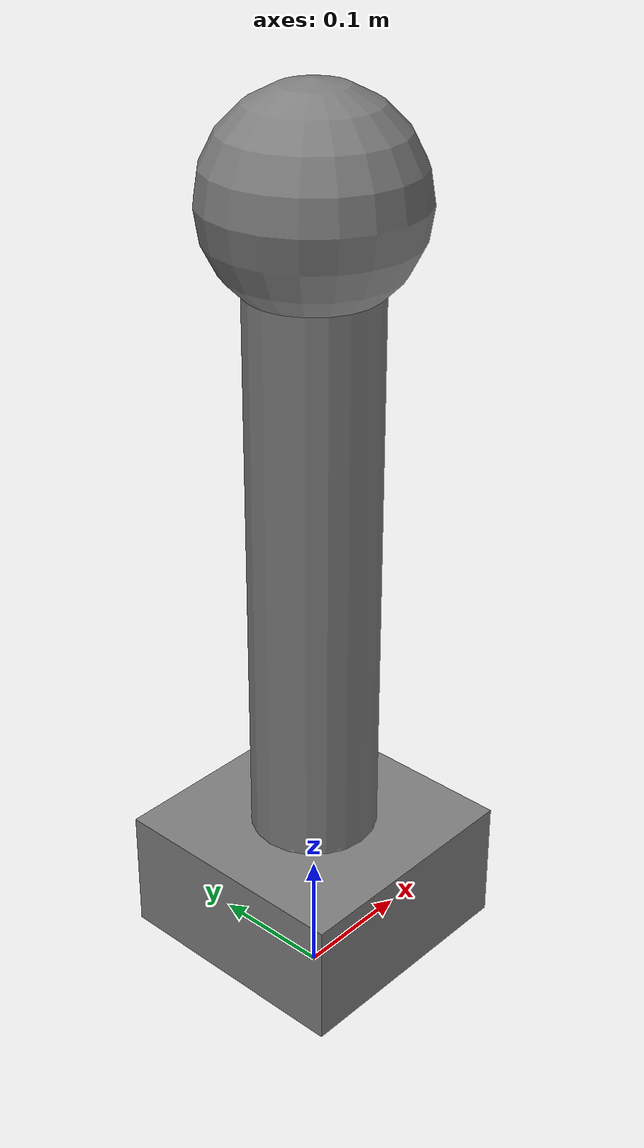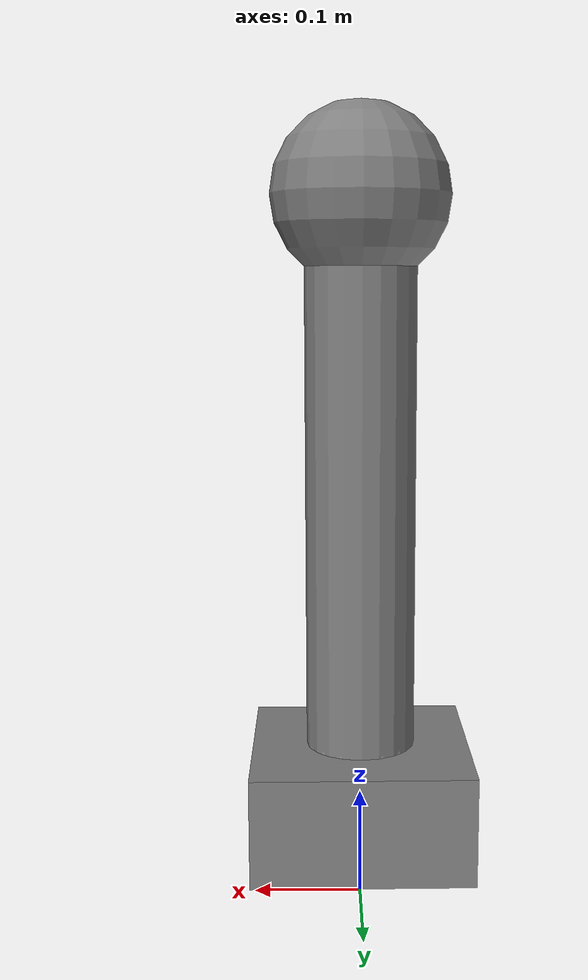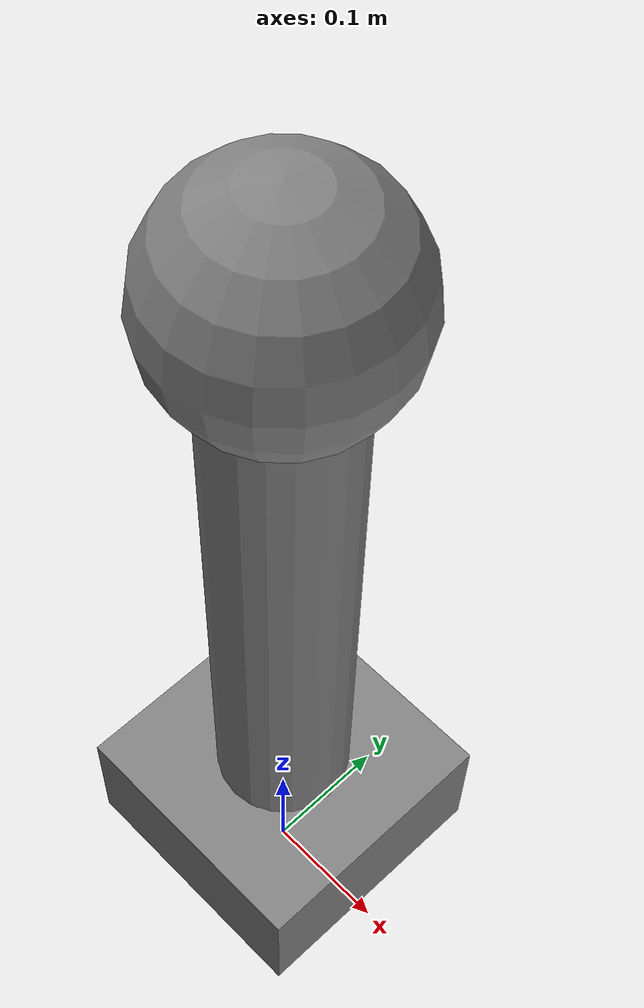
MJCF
<mujoco model="two_link_arm">
                <compiler angle="radian"/>
                <option gravity="0 0 -9.81"/>
                <worldbody>
                    <body name="base_link" pos="0 0 0.1">
                        <inertial pos="0 0 0" mass="5.0" diaginertia="0.5 0.5 0.5"/>
                        <geom type="box" size="0.1 0.1 0.05"/>
                        <body name="link1" pos="0 0 0.05">
                            <joint name="joint1" type="hinge" axis="0 1 0" limited="true" range="-3.14 3.14" damping="0.5"/>
                            <inertial pos="0 0 0.25" mass="1.0" diaginertia="0.1 0.1 0.01"/>
                            <geom type="capsule" size="0.05" fromto="0 0 0 0 0 0.5"/>
                            <body name="link2" pos="0 0 0.5">
                                <joint name="joint2" type="hinge" axis="0 1 0" limited="true" range="-2.0 2.0" damping="0.2"/>
                                <inertial pos="0 0 0.2" mass="0.5" diaginertia="0.05 0.05 0.005"/>
                                <geom type="sphere" size="0.08"/>
                            </body>
                        </body>
                    </body>
                </worldbody>
            </mujoco>
